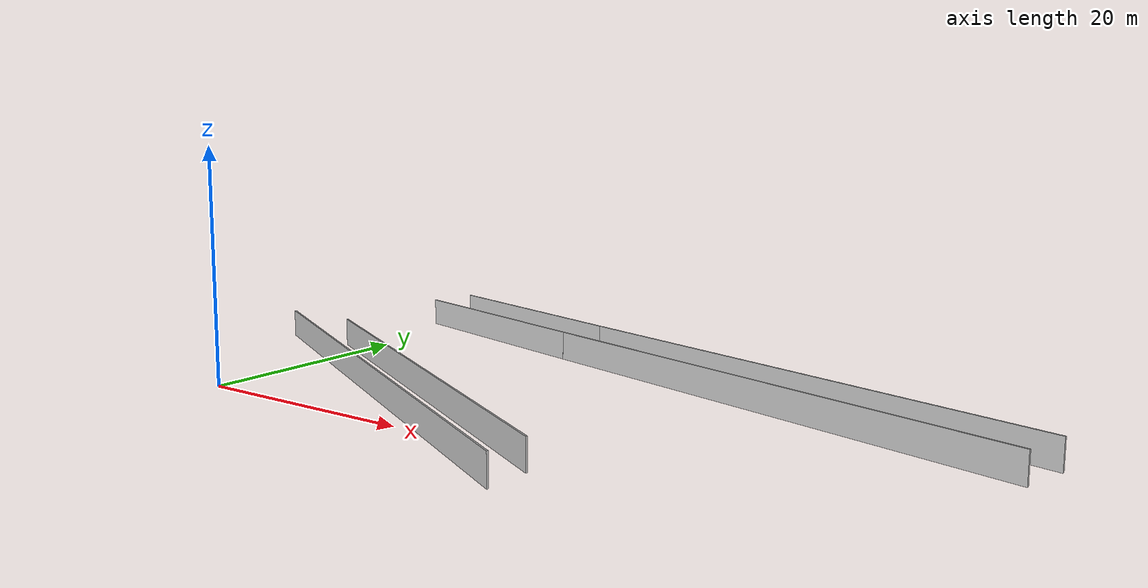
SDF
<?xml version="1.0" ?>
<sdf version="1.6">
  <model name="sps_1506">
    <pose frame="">0 0 0 0 -0 0</pose>
    <static>1</static>
    <self_collide>0</self_collide>
    <allow_auto_disable>0</allow_auto_disable>
    <link name="Wall192">
      <kinematic>0</kinematic>
      <gravity>1</gravity>
      <self_collide>0</self_collide>
      <collision name="collision">
        <geometry>
          <box>
            <size>51.1941 0.15 2.5</size>
          </box>
        </geometry>
        <pose frame="">0 0 0 0 -0 0</pose>
      </collision>
      <visual name="visual">
        <geometry>
          <box>
            <size>51.1941 0.15 2.5</size>
          </box>
        </geometry>
        <pose frame="">0 0 0 0 -0 0</pose>
        <cast_shadows>1</cast_shadows>
        <transparency>0.0</transparency>
      </visual>
      <pose frame="">11.9926 5.6456 1.25 0 -0 2.64268</pose>
    </link>
    <link name="Wall281">
      <kinematic>0</kinematic>
      <gravity>1</gravity>
      <self_collide>0</self_collide>
      <collision name="collision">
        <geometry>
          <box>
            <size>20.9938 0.15 2.5</size>
          </box>
        </geometry>
        <pose frame="">0 0 0 0 -0 0</pose>
      </collision>
      <visual name="visual">
        <geometry>
          <box>
            <size>20.9938 0.15 2.5</size>
          </box>
        </geometry>
        <pose frame="">0 0 0 0 -0 0</pose>
        <cast_shadows>1</cast_shadows>
        <transparency>0.0</transparency>
      </visual>
      <pose frame="">8.07668 32.2319 1.25 0 -0 2.88634</pose>
    </link>
    <link name="Wall351">
      <kinematic>0</kinematic>
      <gravity>1</gravity>
      <self_collide>0</self_collide>
      <collision name="collision">
        <geometry>
          <box>
            <size>20.9947 0.15 2.5</size>
          </box>
        </geometry>
        <pose frame="">0 0 0 0 -0 0</pose>
      </collision>
      <visual name="visual">
        <geometry>
          <box>
            <size>20.9947 0.15 2.5</size>
          </box>
        </geometry>
        <pose frame="">0 0 0 0 -0 0</pose>
        <cast_shadows>1</cast_shadows>
        <transparency>0.0</transparency>
      </visual>
      <pose frame="">6.96624 27.9745 1.25 0 -0 2.88633</pose>
    </link>
    <link name="Wall528">
      <kinematic>0</kinematic>
      <gravity>1</gravity>
      <self_collide>0</self_collide>
      <collision name="collision">
        <geometry>
          <box>
            <size>42.8636 0.15 2.5</size>
          </box>
        </geometry>
        <pose frame="">0 0 0 0 -0 0</pose>
      </collision>
      <visual name="visual">
        <geometry>
          <box>
            <size>42.8636 0.15 2.5</size>
          </box>
        </geometry>
        <pose frame="">0 0 0 0 -0 0</pose>
        <cast_shadows>1</cast_shadows>
        <transparency>0.0</transparency>
      </visual>
      <pose frame="">15.6501 7.63847 1.25 0 0 -0.498918</pose>
    </link>
    <link name="Wall6590">
      <kinematic>0</kinematic>
      <gravity>1</gravity>
      <self_collide>0</self_collide>
      <collision name="collision">
        <geometry>
          <box>
            <size>45.9414 0.15 2.5</size>
          </box>
        </geometry>
        <pose frame="">0 0 0 0 -0 0</pose>
      </collision>
      <visual name="visual">
        <geometry>
          <box>
            <size>45.9414 0.15 2.5</size>
          </box>
        </geometry>
        <pose frame="">0 0 0 0 -0 0</pose>
        <cast_shadows>1</cast_shadows>
        <transparency>0.0</transparency>
      </visual>
      <pose frame="">39.3849 19.6601 1.25 0 -0 2.89246</pose>
    </link>
    <link name="Wall9344">
      <kinematic>0</kinematic>
      <gravity>1</gravity>
      <self_collide>0</self_collide>
      <collision name="collision">
        <geometry>
          <box>
            <size>45.882 0.15 2.5</size>
          </box>
        </geometry>
        <pose frame="">0 0 0 0 -0 0</pose>
      </collision>
      <visual name="visual">
        <geometry>
          <box>
            <size>45.882 0.15 2.5</size>
          </box>
        </geometry>
        <pose frame="">0 0 0 0 -0 0</pose>
        <cast_shadows>1</cast_shadows>
        <transparency>0.0</transparency>
      </visual>
      <pose frame="">40.4662 23.925 1.25 0 -0 2.89246</pose>
    </link>
  </model>
</sdf>
